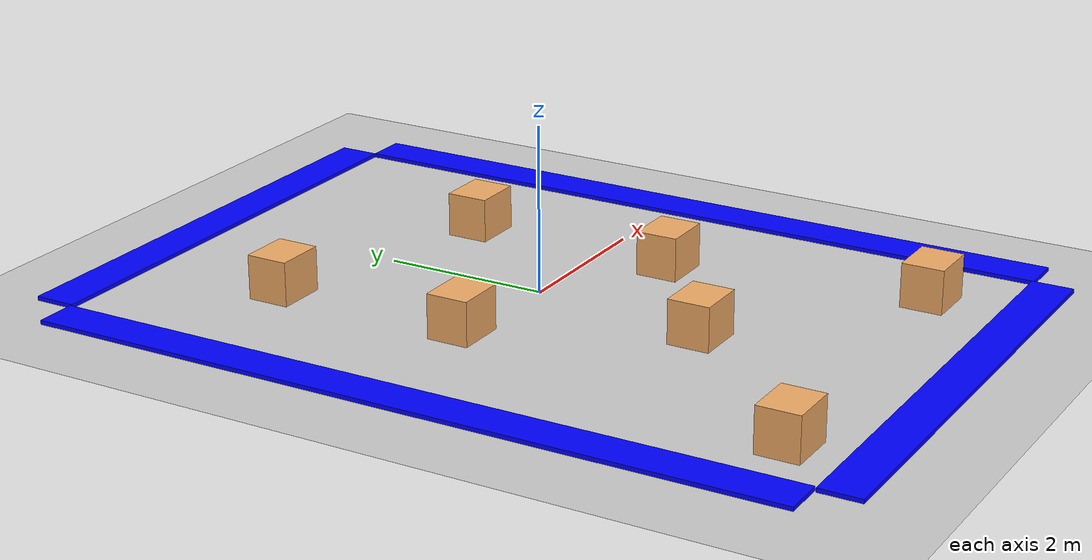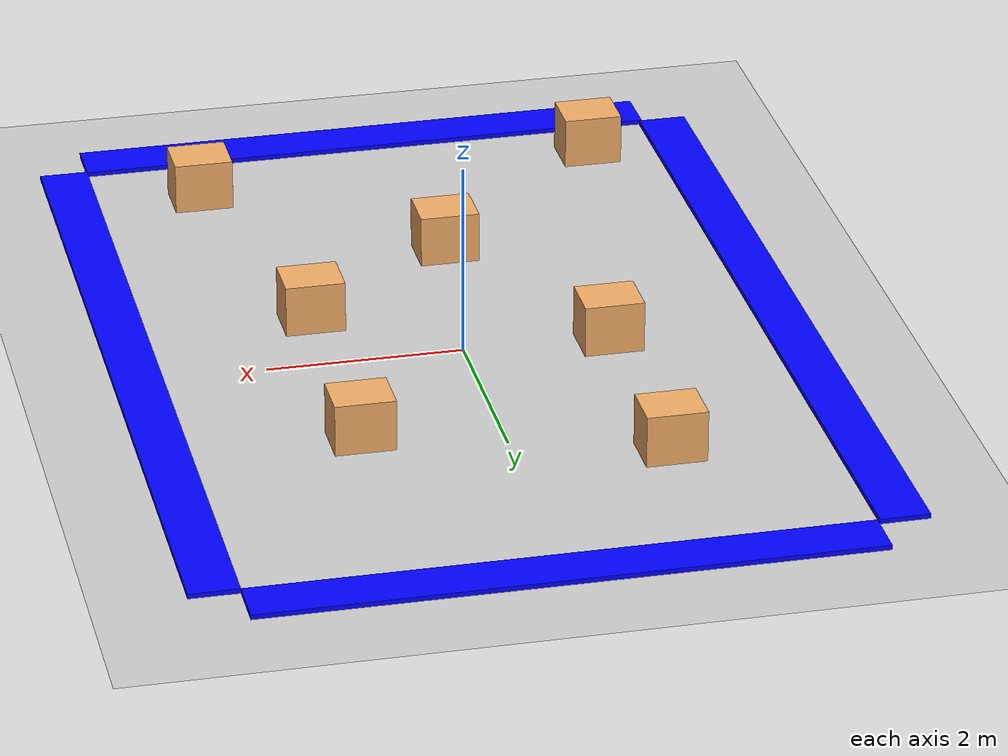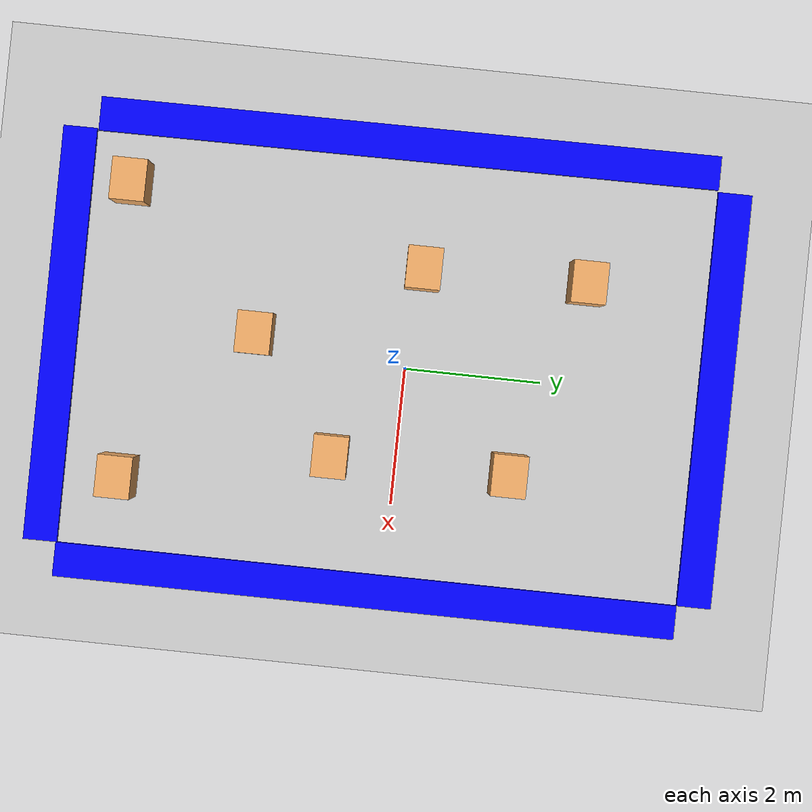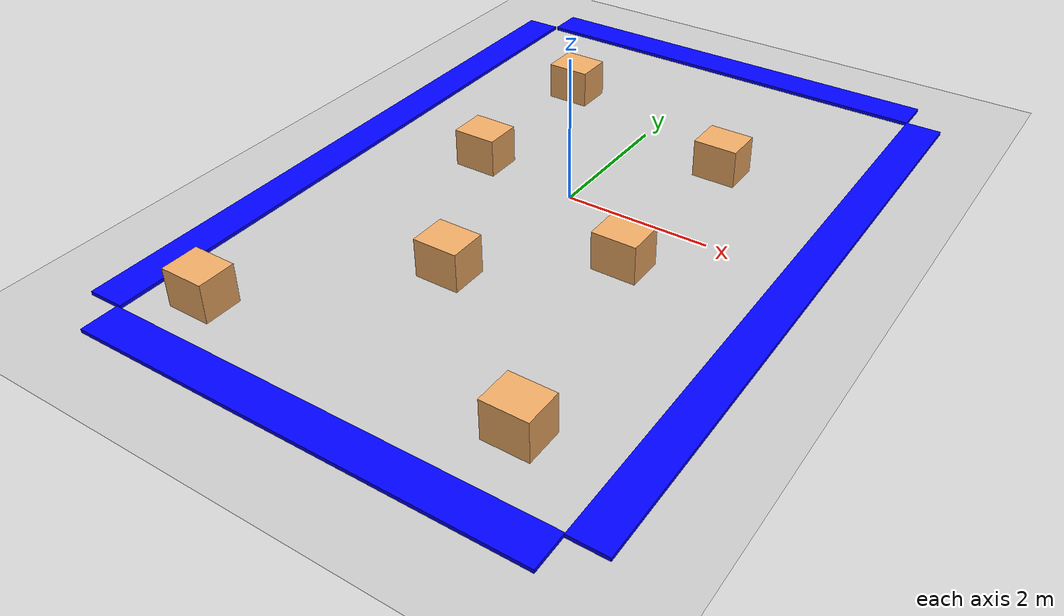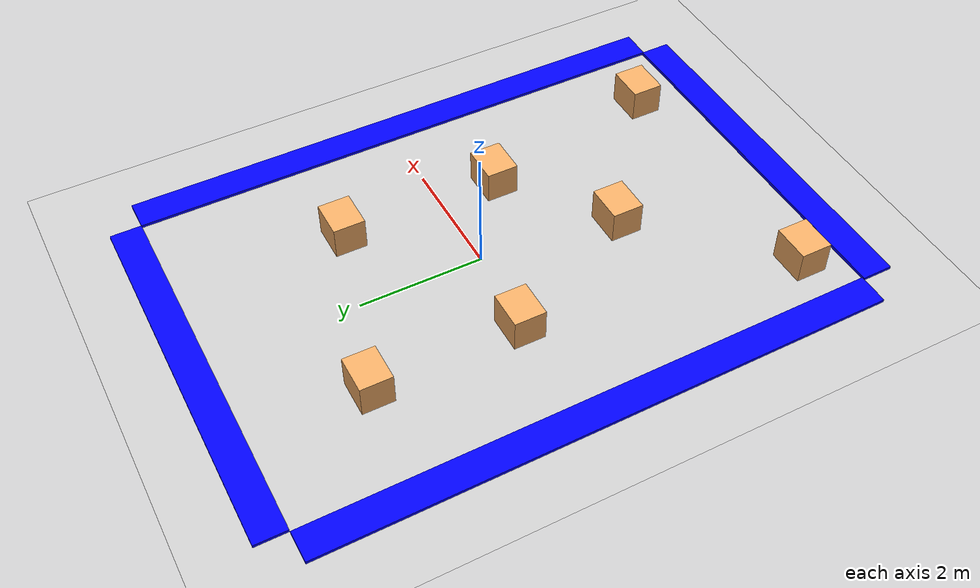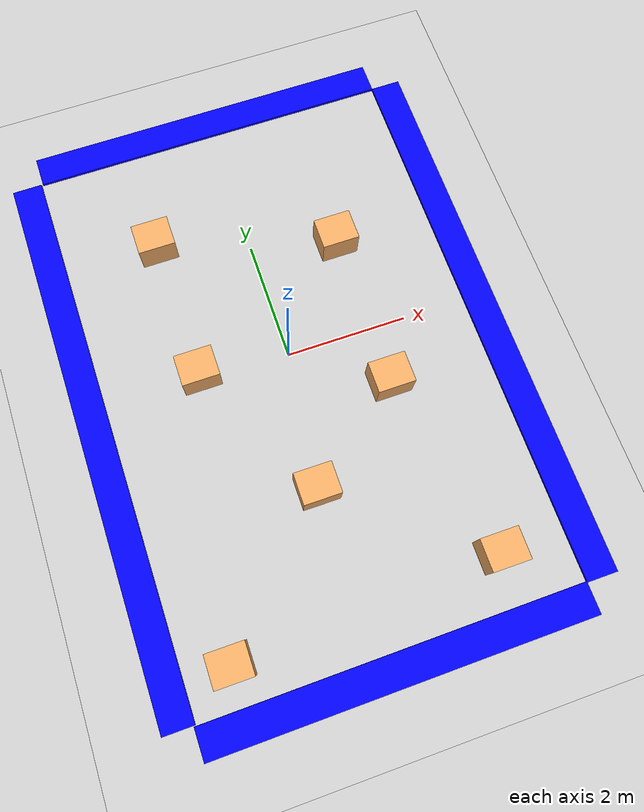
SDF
<sdf version="1.6">
 <world name="default">
  <light name="sun" type="directional">
   <pose>0 0 10 0 -0 0</pose>
   <diffuse>0.8 0.8 0.8 1</diffuse>
   <specular>0.2 0.2 0.2 1</specular>
   <attenuation>
    <range>1000</range>
    <constant>0.9</constant>
    <linear>0.01</linear>
    <quadratic>0.001</quadratic>
   </attenuation>
   <direction>-0.5 0.1 -0.9</direction>
  </light>
  <model name="ground_plane">
   <static>1</static>
   <link name="link">
    <collision name="collision">
     <geometry><plane><normal>0 0 1</normal><size>100 100</size></plane></geometry>
     <surface>
      <contact><collide_bitmask>65535</collide_bitmask></contact>
      <friction><ode><mu>100</mu><mu2>50</mu2></ode></friction>
     </surface>
    </collision>
    <visual name="visual">
     <cast_shadows>0</cast_shadows>
     <geometry><plane><normal>0 0 1</normal><size>100 100</size></plane></geometry>
     <material>
      <script><uri>file://media/materials/scripts/gazebo.material</uri><name>Gazebo/Grey</name></script>
     </material>
    </visual>
   </link>
  </model>
  <physics name="default_physics" default="0" type="ode">
   <real_time_update_rate>1000</real_time_update_rate>
   <max_step_size>0.001</max_step_size>
   <real_time_factor>1</real_time_factor>
   <ode>
    <solver>
     <type>quick</type>
     <iters>150</iters>
     <precon_iters>0</precon_iters>
     <sor>1.4</sor>
     <use_dynamic_moi_rescaling>1</use_dynamic_moi_rescaling>
    </solver>
    <constraints>
     <cfm>1e-05</cfm>
     <erp>0.2</erp>
     <contact_max_correcting_vel>2000</contact_max_correcting_vel>
     <contact_surface_layer>0.01</contact_surface_layer>
    </constraints>
   </ode>
  </physics>
  <scene><ambient>0.4 0.4 0.4 1</ambient><background>0.7 0.7 0.7 1</background><shadows>1</shadows></scene>
  <gravity>0 0 -9.8</gravity>
  <magnetic_field>6e-06 2.3e-05 -4.2e-05</magnetic_field>
  <atmosphere type="adiabatic"/>
  <audio><device>default</device></audio>
  <spherical_coordinates>
   <surface_model>EARTH_WGS84</surface_model>
   <latitude_deg>0</latitude_deg>
   <longitude_deg>0</longitude_deg>
   <elevation>0</elevation>
   <heading_deg>0</heading_deg>
  </spherical_coordinates>
  <model name="Cardboard_Boxes">
   <link name="link">
    <inertial>
     <mass>1</mass>
     <inertia>
      <ixx>0.166667</ixx>
      <ixy>0</ixy>
      <ixz>0</ixz>
      <iyy>0.166667</iyy>
      <iyz>0</iyz>
      <izz>0.166667</izz>
     </inertia>
    </inertial>
    <visual name="visual">
     <geometry><box><size>0.6096 0.508 0.5334</size></box></geometry>
     <material>
      <script><name>Gazebo/Grey</name><uri>file://media/materials/scripts/gazebo.material</uri></script>
      <shader type="vertex"><normal_map>__default__</normal_map></shader>
      <ambient>0.945 0.675 0.4 1</ambient>
      <diffuse>0.7 0.7 0.7 1</diffuse>
      <specular>0.01 0.01 0.01 1</specular>
      <emissive>0 0 0 1</emissive>
     </material>
    </visual>
    <collision name="collision">
     <geometry><box><size>0.6096 0.508 0.5334</size></box></geometry>
     <surface>
      <friction>
       <ode><mu>1</mu><mu2>1</mu2><fdir1>0 0 0</fdir1><slip1>0</slip1><slip2>0</slip2></ode>
       <torsional>
        <coefficient>1</coefficient>
        <patch_radius>0</patch_radius>
        <surface_radius>0</surface_radius>
        <use_patch_radius>1</use_patch_radius>
        <ode><slip>0</slip></ode>
       </torsional>
      </friction>
      <bounce><restitution_coefficient>0</restitution_coefficient><threshold>1e+06</threshold></bounce>
      <contact>
       <collide_without_contact>0</collide_without_contact>
       <collide_without_contact_bitmask>1</collide_without_contact_bitmask>
       <collide_bitmask>1</collide_bitmask>
       <ode>
        <soft_cfm>0</soft_cfm>
        <soft_erp>0.2</soft_erp>
        <kp>1e+13</kp>
        <kd>1</kd>
        <max_vel>0.01</max_vel>
        <min_depth>0</min_depth>
       </ode>
       <bullet>
        <split_impulse>1</split_impulse>
        <split_impulse_penetration_threshold>-0.01</split_impulse_penetration_threshold>
        <soft_cfm>0</soft_cfm>
        <soft_erp>0.2</soft_erp>
        <kp>1e+13</kp>
        <kd>1</kd>
       </bullet>
      </contact>
     </surface>
    </collision>
   </link>
   <static>0</static>
   <pose>-1.50021 2.51182 0.2667 0 -0 0</pose>
  </model>
  <model name="Cardboard_Boxes_clone">
   <link name="link">
    <inertial>
     <mass>1</mass>
     <inertia>
      <ixx>0.166667</ixx>
      <ixy>0</ixy>
      <ixz>0</ixz>
      <iyy>0.166667</iyy>
      <iyz>0</iyz>
      <izz>0.166667</izz>
     </inertia>
    </inertial>
    <visual name="visual">
     <geometry><box><size>0.6096 0.508 0.5334</size></box></geometry>
     <material>
      <script><name>Gazebo/Grey</name><uri>file://media/materials/scripts/gazebo.material</uri></script>
      <shader type="vertex"><normal_map>__default__</normal_map></shader>
      <ambient>0.945 0.675 0.4 1</ambient>
      <diffuse>0.7 0.7 0.7 1</diffuse>
      <specular>0.01 0.01 0.01 1</specular>
      <emissive>0 0 0 1</emissive>
     </material>
    </visual>
    <collision name="collision">
     <geometry><box><size>0.6096 0.508 0.5334</size></box></geometry>
     <surface>
      <friction>
       <ode><mu>1</mu><mu2>1</mu2><fdir1>0 0 0</fdir1><slip1>0</slip1><slip2>0</slip2></ode>
       <torsional>
        <coefficient>1</coefficient>
        <patch_radius>0</patch_radius>
        <surface_radius>0</surface_radius>
        <use_patch_radius>1</use_patch_radius>
        <ode><slip>0</slip></ode>
       </torsional>
      </friction>
      <bounce><restitution_coefficient>0</restitution_coefficient><threshold>1e+06</threshold></bounce>
      <contact>
       <collide_without_contact>0</collide_without_contact>
       <collide_without_contact_bitmask>1</collide_without_contact_bitmask>
       <collide_bitmask>1</collide_bitmask>
       <ode>
        <soft_cfm>0</soft_cfm>
        <soft_erp>0.2</soft_erp>
        <kp>1e+13</kp>
        <kd>1</kd>
        <max_vel>0.01</max_vel>
        <min_depth>0</min_depth>
       </ode>
       <bullet>
        <split_impulse>1</split_impulse>
        <split_impulse_penetration_threshold>-0.01</split_impulse_penetration_threshold>
        <soft_cfm>0</soft_cfm>
        <soft_erp>0.2</soft_erp>
        <kp>1e+13</kp>
        <kd>1</kd>
       </bullet>
      </contact>
     </surface>
    </collision>
   </link>
   <static>0</static>
   <pose>1.37994 1.65032 0.2667 0 -0 0</pose>
  </model>
  <model name="Cardboard_Boxes_clone_0">
   <link name="link">
    <inertial>
     <mass>1</mass>
     <inertia>
      <ixx>0.166667</ixx>
      <ixy>0</ixy>
      <ixz>0</ixz>
      <iyy>0.166667</iyy>
      <iyz>0</iyz>
      <izz>0.166667</izz>
     </inertia>
    </inertial>
    <visual name="visual">
     <geometry><box><size>0.6096 0.508 0.5334</size></box></geometry>
     <material>
      <script><name>Gazebo/Grey</name><uri>file://media/materials/scripts/gazebo.material</uri></script>
      <shader type="vertex"><normal_map>__default__</normal_map></shader>
      <ambient>0.945 0.675 0.4 1</ambient>
      <diffuse>0.7 0.7 0.7 1</diffuse>
      <specular>0.01 0.01 0.01 1</specular>
      <emissive>0 0 0 1</emissive>
     </material>
    </visual>
    <collision name="collision">
     <geometry><box><size>0.6096 0.508 0.5334</size></box></geometry>
     <surface>
      <friction>
       <ode><mu>1</mu><mu2>1</mu2><fdir1>0 0 0</fdir1><slip1>0</slip1><slip2>0</slip2></ode>
       <torsional>
        <coefficient>1</coefficient>
        <patch_radius>0</patch_radius>
        <surface_radius>0</surface_radius>
        <use_patch_radius>1</use_patch_radius>
        <ode><slip>0</slip></ode>
       </torsional>
      </friction>
      <bounce><restitution_coefficient>0</restitution_coefficient><threshold>1e+06</threshold></bounce>
      <contact>
       <collide_without_contact>0</collide_without_contact>
       <collide_without_contact_bitmask>1</collide_without_contact_bitmask>
       <collide_bitmask>1</collide_bitmask>
       <ode>
        <soft_cfm>0</soft_cfm>
        <soft_erp>0.2</soft_erp>
        <kp>1e+13</kp>
        <kd>1</kd>
        <max_vel>0.01</max_vel>
        <min_depth>0</min_depth>
       </ode>
       <bullet>
        <split_impulse>1</split_impulse>
        <split_impulse_penetration_threshold>-0.01</split_impulse_penetration_threshold>
        <soft_cfm>0</soft_cfm>
        <soft_erp>0.2</soft_erp>
        <kp>1e+13</kp>
        <kd>1</kd>
       </bullet>
      </contact>
     </surface>
    </collision>
   </link>
   <static>0</static>
   <pose>-1.4668 0.131076 0.2667 0 -0 0</pose>
  </model>
  <model name="Cardboard_Boxes_clone_1">
   <link name="link">
    <inertial>
     <mass>1</mass>
     <inertia>
      <ixx>0.166667</ixx>
      <ixy>0</ixy>
      <ixz>0</ixz>
      <iyy>0.166667</iyy>
      <iyz>0</iyz>
      <izz>0.166667</izz>
     </inertia>
    </inertial>
    <visual name="visual">
     <geometry><box><size>0.6096 0.508 0.5334</size></box></geometry>
     <material>
      <script><name>Gazebo/Grey</name><uri>file://media/materials/scripts/gazebo.material</uri></script>
      <shader type="vertex"><normal_map>__default__</normal_map></shader>
      <ambient>0.945 0.675 0.4 1</ambient>
      <diffuse>0.7 0.7 0.7 1</diffuse>
      <specular>0.01 0.01 0.01 1</specular>
      <emissive>0 0 0 1</emissive>
     </material>
    </visual>
    <collision name="collision">
     <geometry><box><size>0.6096 0.508 0.5334</size></box></geometry>
     <surface>
      <friction>
       <ode><mu>1</mu><mu2>1</mu2><fdir1>0 0 0</fdir1><slip1>0</slip1><slip2>0</slip2></ode>
       <torsional>
        <coefficient>1</coefficient>
        <patch_radius>0</patch_radius>
        <surface_radius>0</surface_radius>
        <use_patch_radius>1</use_patch_radius>
        <ode><slip>0</slip></ode>
       </torsional>
      </friction>
      <bounce><restitution_coefficient>0</restitution_coefficient><threshold>1e+06</threshold></bounce>
      <contact>
       <collide_without_contact>0</collide_without_contact>
       <collide_without_contact_bitmask>1</collide_without_contact_bitmask>
       <collide_bitmask>1</collide_bitmask>
       <ode>
        <soft_cfm>0</soft_cfm>
        <soft_erp>0.2</soft_erp>
        <kp>1e+13</kp>
        <kd>1</kd>
        <max_vel>0.01</max_vel>
        <min_depth>0</min_depth>
       </ode>
       <bullet>
        <split_impulse>1</split_impulse>
        <split_impulse_penetration_threshold>-0.01</split_impulse_penetration_threshold>
        <soft_cfm>0</soft_cfm>
        <soft_erp>0.2</soft_erp>
        <kp>1e+13</kp>
        <kd>1</kd>
       </bullet>
      </contact>
     </surface>
    </collision>
   </link>
   <static>0</static>
   <pose>1.36617 -0.940393 0.2667 0 -0 0</pose>
  </model>
  <model name="Cardboard_Boxes_clone_2">
   <link name="link">
    <inertial>
     <mass>1</mass>
     <inertia>
      <ixx>0.166667</ixx>
      <ixy>0</ixy>
      <ixz>0</ixz>
      <iyy>0.166667</iyy>
      <iyz>0</iyz>
      <izz>0.166667</izz>
     </inertia>
    </inertial>
    <visual name="visual">
     <geometry><box><size>0.6096 0.508 0.5334</size></box></geometry>
     <material>
      <script><name>Gazebo/Grey</name><uri>file://media/materials/scripts/gazebo.material</uri></script>
      <shader type="vertex"><normal_map>__default__</normal_map></shader>
      <ambient>0.945 0.675 0.4 1</ambient>
      <diffuse>0.7 0.7 0.7 1</diffuse>
      <specular>0.01 0.01 0.01 1</specular>
      <emissive>0 0 0 1</emissive>
     </material>
    </visual>
    <collision name="collision">
     <geometry><box><size>0.6096 0.508 0.5334</size></box></geometry>
     <surface>
      <friction>
       <ode><mu>1</mu><mu2>1</mu2><fdir1>0 0 0</fdir1><slip1>0</slip1><slip2>0</slip2></ode>
       <torsional>
        <coefficient>1</coefficient>
        <patch_radius>0</patch_radius>
        <surface_radius>0</surface_radius>
        <use_patch_radius>1</use_patch_radius>
        <ode><slip>0</slip></ode>
       </torsional>
      </friction>
      <bounce><restitution_coefficient>0</restitution_coefficient><threshold>1e+06</threshold></bounce>
      <contact>
       <collide_without_contact>0</collide_without_contact>
       <collide_without_contact_bitmask>1</collide_without_contact_bitmask>
       <collide_bitmask>1</collide_bitmask>
       <ode>
        <soft_cfm>0</soft_cfm>
        <soft_erp>0.2</soft_erp>
        <kp>1e+13</kp>
        <kd>1</kd>
        <max_vel>0.01</max_vel>
        <min_depth>0</min_depth>
       </ode>
       <bullet>
        <split_impulse>1</split_impulse>
        <split_impulse_penetration_threshold>-0.01</split_impulse_penetration_threshold>
        <soft_cfm>0</soft_cfm>
        <soft_erp>0.2</soft_erp>
        <kp>1e+13</kp>
        <kd>1</kd>
       </bullet>
      </contact>
     </surface>
    </collision>
   </link>
   <static>0</static>
   <pose>1.96681 -3.98642 0.2667 0 -0 0</pose>
  </model>
  <model name="Cardboard_Boxes_clone_3">
   <link name="link">
    <inertial>
     <mass>1</mass>
     <inertia>
      <ixx>0.166667</ixx>
      <ixy>0</ixy>
      <ixz>0</ixz>
      <iyy>0.166667</iyy>
      <iyz>0</iyz>
      <izz>0.166667</izz>
     </inertia>
    </inertial>
    <visual name="visual">
     <geometry><box><size>0.6096 0.508 0.5334</size></box></geometry>
     <material>
      <script><name>Gazebo/Grey</name><uri>file://media/materials/scripts/gazebo.material</uri></script>
      <shader type="vertex"><normal_map>__default__</normal_map></shader>
      <ambient>0.945 0.675 0.4 1</ambient>
      <diffuse>0.7 0.7 0.7 1</diffuse>
      <specular>0.01 0.01 0.01 1</specular>
      <emissive>0 0 0 1</emissive>
     </material>
    </visual>
    <collision name="collision">
     <geometry><box><size>0.6096 0.508 0.5334</size></box></geometry>
     <surface>
      <friction>
       <ode><mu>1</mu><mu2>1</mu2><fdir1>0 0 0</fdir1><slip1>0</slip1><slip2>0</slip2></ode>
       <torsional>
        <coefficient>1</coefficient>
        <patch_radius>0</patch_radius>
        <surface_radius>0</surface_radius>
        <use_patch_radius>1</use_patch_radius>
        <ode><slip>0</slip></ode>
       </torsional>
      </friction>
      <bounce><restitution_coefficient>0</restitution_coefficient><threshold>1e+06</threshold></bounce>
      <contact>
       <collide_without_contact>0</collide_without_contact>
       <collide_without_contact_bitmask>1</collide_without_contact_bitmask>
       <collide_bitmask>1</collide_bitmask>
       <ode>
        <soft_cfm>0</soft_cfm>
        <soft_erp>0.2</soft_erp>
        <kp>1e+13</kp>
        <kd>1</kd>
        <max_vel>0.01</max_vel>
        <min_depth>0</min_depth>
       </ode>
       <bullet>
        <split_impulse>1</split_impulse>
        <split_impulse_penetration_threshold>-0.01</split_impulse_penetration_threshold>
        <soft_cfm>0</soft_cfm>
        <soft_erp>0.2</soft_erp>
        <kp>1e+13</kp>
        <kd>1</kd>
       </bullet>
      </contact>
     </surface>
    </collision>
   </link>
   <static>0</static>
   <pose>-0.291902 -2.20637 0.2667 0 -0 0</pose>
  </model>
  <model name="Cardboard_Boxes_clone_4">
   <link name="link">
    <inertial>
     <mass>1</mass>
     <inertia>
      <ixx>0.166667</ixx>
      <ixy>0</ixy>
      <ixz>0</ixz>
      <iyy>0.166667</iyy>
      <iyz>0</iyz>
      <izz>0.166667</izz>
     </inertia>
    </inertial>
    <visual name="visual">
     <geometry><box><size>0.6096 0.508 0.5334</size></box></geometry>
     <material>
      <script><name>Gazebo/Grey</name><uri>file://media/materials/scripts/gazebo.material</uri></script>
      <shader type="vertex"><normal_map>__default__</normal_map></shader>
      <ambient>0.945 0.675 0.4 1</ambient>
      <diffuse>0.7 0.7 0.7 1</diffuse>
      <specular>0.01 0.01 0.01 1</specular>
      <emissive>0 0 0 1</emissive>
     </material>
    </visual>
    <collision name="collision">
     <geometry><box><size>0.6096 0.508 0.5334</size></box></geometry>
     <surface>
      <friction>
       <ode><mu>1</mu><mu2>1</mu2><fdir1>0 0 0</fdir1><slip1>0</slip1><slip2>0</slip2></ode>
       <torsional>
        <coefficient>1</coefficient>
        <patch_radius>0</patch_radius>
        <surface_radius>0</surface_radius>
        <use_patch_radius>1</use_patch_radius>
        <ode><slip>0</slip></ode>
       </torsional>
      </friction>
      <bounce><restitution_coefficient>0</restitution_coefficient><threshold>1e+06</threshold></bounce>
      <contact>
       <collide_without_contact>0</collide_without_contact>
       <collide_without_contact_bitmask>1</collide_without_contact_bitmask>
       <collide_bitmask>1</collide_bitmask>
       <ode>
        <soft_cfm>0</soft_cfm>
        <soft_erp>0.2</soft_erp>
        <kp>1e+13</kp>
        <kd>1</kd>
        <max_vel>0.01</max_vel>
        <min_depth>0</min_depth>
       </ode>
       <bullet>
        <split_impulse>1</split_impulse>
        <split_impulse_penetration_threshold>-0.01</split_impulse_penetration_threshold>
        <soft_cfm>0</soft_cfm>
        <soft_erp>0.2</soft_erp>
        <kp>1e+13</kp>
        <kd>1</kd>
       </bullet>
      </contact>
     </surface>
    </collision>
   </link>
   <static>0</static>
   <pose>-2.2946 -4.21256 0.2667 0 -0 0</pose>
  </model>
  <model name="Blue_TapeV_clone">
   <link name="link">
    <inertial>
     <mass>0.01</mass>
     <inertia>
      <ixx>0.00021042</ixx>
      <ixy>0</ixy>
      <ixz>0</ixz>
      <iyy>0.0696794</iyy>
      <iyz>0</iyz>
      <izz>0.0698856</izz>
     </inertia>
    </inertial>
    <visual name="visual">
     <geometry><box><size>9.144 0.5 0.05</size></box></geometry>
     <material>
      <script><name>Gazebo/Grey</name><uri>file://media/materials/scripts/gazebo.material</uri></script>
      <shader type="vertex"><normal_map>__default__</normal_map></shader>
      <ambient>0 0 1 1</ambient>
      <diffuse>0.7 0.7 0.7 1</diffuse>
      <specular>0.01 0.01 0.01 1</specular>
      <emissive>0 0 0 1</emissive>
     </material>
    </visual>
    <collision name="collision">
     <geometry><box><size>9.144 0.5 1.05</size></box></geometry>
     <surface>
      <friction>
       <ode><mu>1</mu><mu2>1</mu2><fdir1>0 0 0</fdir1><slip1>0</slip1><slip2>0</slip2></ode>
       <torsional>
        <coefficient>1</coefficient>
        <patch_radius>0</patch_radius>
        <surface_radius>0</surface_radius>
        <use_patch_radius>1</use_patch_radius>
        <ode><slip>0</slip></ode>
       </torsional>
      </friction>
      <bounce><restitution_coefficient>0</restitution_coefficient><threshold>1e+06</threshold></bounce>
      <contact>
       <collide_without_contact>0</collide_without_contact>
       <collide_without_contact_bitmask>1</collide_without_contact_bitmask>
       <collide_bitmask>1</collide_bitmask>
       <ode>
        <soft_cfm>0</soft_cfm>
        <soft_erp>0.2</soft_erp>
        <kp>1e+13</kp>
        <kd>1</kd>
        <max_vel>0.01</max_vel>
        <min_depth>0</min_depth>
       </ode>
       <bullet>
        <split_impulse>1</split_impulse>
        <split_impulse_penetration_threshold>-0.01</split_impulse_penetration_threshold>
        <soft_cfm>0</soft_cfm>
        <soft_erp>0.2</soft_erp>
        <kp>1e+13</kp>
        <kd>1</kd>
       </bullet>
      </contact>
     </surface>
    </collision>
   </link>
   <static>0</static>
   <pose>3.298 -0.25 0.025 0 -0 1.5708</pose>
  </model>
  <model name="Blue_TapeH">
   <link name="link">
    <inertial>
     <mass>0.01</mass>
     <inertia>
      <ixx>0.00021042</ixx>
      <ixy>0</ixy>
      <ixz>0</ixz>
      <iyy>0.0309698</iyy>
      <iyz>0</iyz>
      <izz>0.031176</izz>
     </inertia>
    </inertial>
    <visual name="visual">
     <geometry><box><size>6.096 0.5 0.05</size></box></geometry>
     <material>
      <script><name>Gazebo/Grey</name><uri>file://media/materials/scripts/gazebo.material</uri></script>
      <shader type="vertex"><normal_map>__default__</normal_map></shader>
      <ambient>0 0 1 1</ambient>
      <diffuse>0.7 0.7 0.7 1</diffuse>
      <specular>0.01 0.01 0.01 1</specular>
      <emissive>0 0 0 1</emissive>
     </material>
    </visual>
    <collision name="collision">
     <geometry><box><size>6.096 0.5 1.05</size></box></geometry>
     <surface>
      <friction>
       <ode><mu>1</mu><mu2>1</mu2><fdir1>0 0 0</fdir1><slip1>0</slip1><slip2>0</slip2></ode>
       <torsional>
        <coefficient>1</coefficient>
        <patch_radius>0</patch_radius>
        <surface_radius>0</surface_radius>
        <use_patch_radius>1</use_patch_radius>
        <ode><slip>0</slip></ode>
       </torsional>
      </friction>
      <bounce><restitution_coefficient>0</restitution_coefficient><threshold>1e+06</threshold></bounce>
      <contact>
       <collide_without_contact>0</collide_without_contact>
       <collide_without_contact_bitmask>1</collide_without_contact_bitmask>
       <collide_bitmask>1</collide_bitmask>
       <ode>
        <soft_cfm>0</soft_cfm>
        <soft_erp>0.2</soft_erp>
        <kp>1e+13</kp>
        <kd>1</kd>
        <max_vel>0.01</max_vel>
        <min_depth>0</min_depth>
       </ode>
       <bullet>
        <split_impulse>1</split_impulse>
        <split_impulse_penetration_threshold>-0.01</split_impulse_penetration_threshold>
        <soft_cfm>0</soft_cfm>
        <soft_erp>0.2</soft_erp>
        <kp>1e+13</kp>
        <kd>1</kd>
       </bullet>
      </contact>
     </surface>
    </collision>
   </link>
   <static>0</static>
   <pose>0 4.572 0.025 0 -0 0</pose>
  </model>
  <model name="Blue_TapeV">
   <link name="Blue_TapeV::link">
    <inertial>
     <mass>0.1</mass>
     <inertia>
      <ixx>0.00052167</ixx>
      <ixy>0</ixy>
      <ixz>0</ixz>
      <iyy>0.696774</iyy>
      <iyz>0</iyz>
      <izz>0.697294</izz>
     </inertia>
    </inertial>
    <visual name="visual">
     <geometry><box><size>9.144 0.5 0.05</size></box></geometry>
     <material>
      <script><name>Gazebo/Grey</name><uri>file://media/materials/scripts/gazebo.material</uri></script>
      <shader type="vertex"><normal_map>__default__</normal_map></shader>
      <ambient>0 0 1 1</ambient>
      <diffuse>0.7 0.7 0.7 1</diffuse>
      <specular>0.01 0.01 0.01 1</specular>
      <emissive>0 0 0 1</emissive>
     </material>
    </visual>
    <collision name="collision">
     <geometry><box><size>9.144 0.5 1.05</size></box></geometry>
     <surface>
      <friction>
       <ode><mu>1</mu><mu2>1</mu2><fdir1>0 0 0</fdir1><slip1>0</slip1><slip2>0</slip2></ode>
       <torsional>
        <coefficient>1</coefficient>
        <patch_radius>0</patch_radius>
        <surface_radius>0</surface_radius>
        <use_patch_radius>1</use_patch_radius>
        <ode><slip>0</slip></ode>
       </torsional>
      </friction>
      <bounce><restitution_coefficient>0</restitution_coefficient><threshold>1e+06</threshold></bounce>
      <contact>
       <collide_without_contact>0</collide_without_contact>
       <collide_without_contact_bitmask>1</collide_without_contact_bitmask>
       <collide_bitmask>1</collide_bitmask>
       <ode>
        <soft_cfm>0</soft_cfm>
        <soft_erp>0.2</soft_erp>
        <kp>1e+13</kp>
        <kd>1</kd>
        <max_vel>0.01</max_vel>
        <min_depth>0</min_depth>
       </ode>
       <bullet>
        <split_impulse>1</split_impulse>
        <split_impulse_penetration_threshold>-0.01</split_impulse_penetration_threshold>
        <soft_cfm>0</soft_cfm>
        <soft_erp>0.2</soft_erp>
        <kp>1e+13</kp>
        <kd>1</kd>
       </bullet>
      </contact>
     </surface>
    </collision>
   </link>
   <static>0</static>
   <pose>-3.29865 -0.250558 0.025 0 -0 1.57644</pose>
  </model>
  <model name="Blue_TapeH_clone">
   <link name="link">
    <inertial>
     <mass>0.05</mass>
     <inertia>
      <ixx>0.00105208</ixx>
      <ixy>0</ixy>
      <ixz>0</ixz>
      <iyy>0.154849</iyy>
      <iyz>0</iyz>
      <izz>0.15588</izz>
     </inertia>
    </inertial>
    <visual name="visual">
     <geometry><box><size>6.096 0.5 0.05</size></box></geometry>
     <material>
      <script><name>Gazebo/Grey</name><uri>file://media/materials/scripts/gazebo.material</uri></script>
      <shader type="vertex"><normal_map>__default__</normal_map></shader>
      <ambient>0 0 1 1</ambient>
      <diffuse>0.7 0.7 0.7 1</diffuse>
      <specular>0.01 0.01 0.01 1</specular>
      <emissive>0 0 0 1</emissive>
     </material>
    </visual>
    <collision name="collision">
     <geometry><box><size>6.096 0.5 1.05</size></box></geometry>
     <surface>
      <friction>
       <ode><mu>1</mu><mu2>1</mu2><fdir1>0 0 0</fdir1><slip1>0</slip1><slip2>0</slip2></ode>
       <torsional>
        <coefficient>1</coefficient>
        <patch_radius>0</patch_radius>
        <surface_radius>0</surface_radius>
        <use_patch_radius>1</use_patch_radius>
        <ode><slip>0</slip></ode>
       </torsional>
      </friction>
      <bounce><restitution_coefficient>0</restitution_coefficient><threshold>1e+06</threshold></bounce>
      <contact>
       <collide_without_contact>0</collide_without_contact>
       <collide_without_contact_bitmask>1</collide_without_contact_bitmask>
       <collide_bitmask>1</collide_bitmask>
       <ode>
        <soft_cfm>0</soft_cfm>
        <soft_erp>0.2</soft_erp>
        <kp>1e+13</kp>
        <kd>1</kd>
        <max_vel>0.01</max_vel>
        <min_depth>0</min_depth>
       </ode>
       <bullet>
        <split_impulse>1</split_impulse>
        <split_impulse_penetration_threshold>-0.01</split_impulse_penetration_threshold>
        <soft_cfm>0</soft_cfm>
        <soft_erp>0.2</soft_erp>
        <kp>1e+13</kp>
        <kd>1</kd>
       </bullet>
      </contact>
     </surface>
    </collision>
   </link>
   <static>0</static>
   <pose>-4e-06 -5.072 0.025 0 -0 0.005695</pose>
  </model>
 </world>
</sdf>
